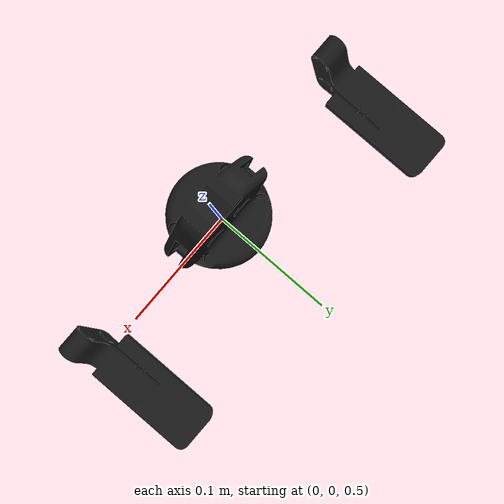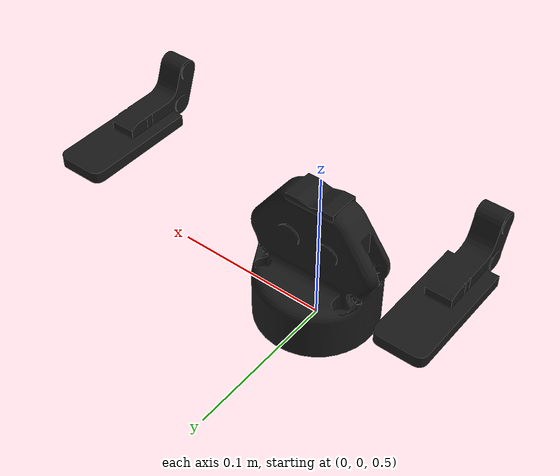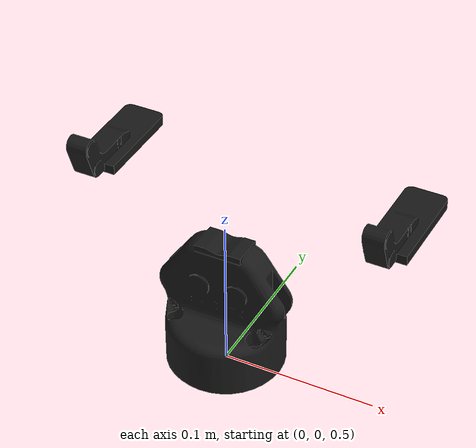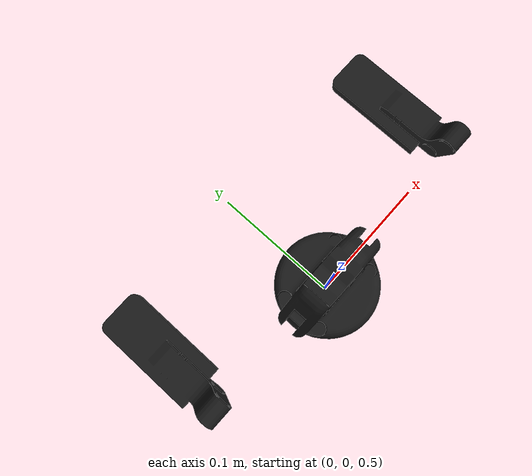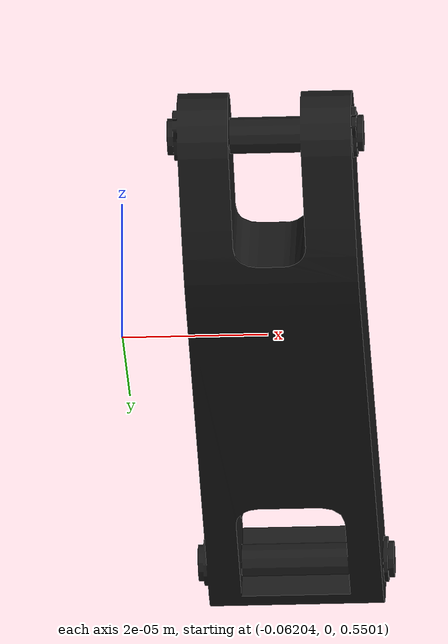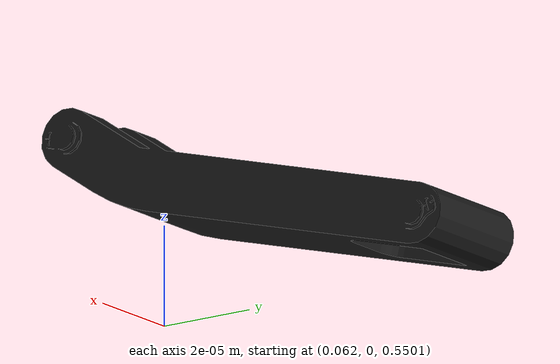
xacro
<?xml version="1.0"?>
<robot xmlns:xacro="http://ros.org/wiki/xacro" name="robotiq_gripper" >
  <xacro:include filename="$(find robotiq_140_gripper_description)/urdf/robotiq_140.urdf.xacro" />
  <xacro:robotiq_gripper prefix="robotiq_140_" MAC="_000000000004"/>

  <link name="world" />

  <joint name="world_to_robotiq_adapter" type="fixed">
    <origin rpy="0 0 0" xyz="0 0 0.5"/>
    <parent link="world"/>
    <child link="robotiq_140_robotiq_arg2f_base_link"/>
  </joint>

  <gazebo>
    <plugin filename="libgazebo_ros_joint_state_publisher.so" name="robotiq_140_joint_state">
      <ros>
        <argument>~/out:=robotiq_140_joint_states</argument>
      </ros>
      <update_rate>25</update_rate>
      <joint_name>robotiq_140_joint_finger</joint_name>
    </plugin>
  </gazebo>
</robot>

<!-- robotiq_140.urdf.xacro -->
<robot xmlns:xacro="http://ros.org/wiki/xacro">
  <xacro:macro name="robotiq_gripper"  params="prefix MAC">
    <link name="${prefix}robotiq_arg2f_base_link">
      <inertial>
        <origin xyz="-0.00013 0.00011 0.03284" rpy="0 0 0" />
        <mass value="0.52954" />
        <inertia ixx="573495E-9" ixy="-554E-9" ixz="2628E-9" iyy="681780E-9" iyz="607E-9" izz="483281E-9" />
      </inertial>
      <visual>
        <origin xyz="0 0 0" rpy="0 0 0" />
        <geometry>
          <mesh filename="package://robotiq_140_gripper_description/meshes/GRIPPER_base_axis.dae" scale="0.001 0.001 0.001"/>
        </geometry>
        <material name="Gazebo/Black">
          <color rgba="0.1 0.1 0.1 1" />
        </material>
      </visual>
      <collision>
        <origin xyz="0 0 0" rpy="0 0 0" />
        <geometry>
          <mesh filename="package://robotiq_140_gripper_description/meshes/GRIPPER_base_axis.dae" scale="0.001 0.001 0.001"/>
        </geometry>
      </collision>
    </link>
    <gazebo reference="${prefix}robotiq_arg2f_base_link">
      <material>Gazebo/Black</material>
      <selfCollide>True</selfCollide>
    </gazebo>

    <link name="${prefix}left_outer_knuckle">
      <inertial>
        <origin xyz="0.01616 0 -0.00133" rpy="0 0 0" />
        <mass value="0.0131" />
        <inertia ixx="325.5E-9" ixy="0" ixz="197.94E-9" iyy="2306.36E-9" iyz="0" izz="2176E-9" />
      </inertial>
      <visual>
        <origin xyz="0 0 0" rpy="0 0 0" />
        <geometry>
          <mesh filename="package://robotiq_140_gripper_description/meshes/robotiq_140_left_outer_knuckle.dae" scale="0.001 0.001 0.001"/>
        </geometry>
        <material name="">
          <color rgba="0.792156862745098 0.819607843137255 0.933333333333333 1" />
        </material>
      </visual>
      <collision>
        <origin xyz="0 0 0" rpy="0 0 0" />
        <geometry>
          <mesh filename="package://robotiq_140_gripper_description/meshes/robotiq_140_left_outer_knuckle.dae" scale="0.001 0.001 0.001"/>
        </geometry>
      </collision>
    </link>
    <gazebo reference="${prefix}left_outer_knuckle">
      <material>Gazebo/Grey</material>
      <selfCollide>True</selfCollide>
    </gazebo>

    <link name="${prefix}right_outer_knuckle">
      <inertial>
        <origin xyz="-0.01616 0 -0.00133" rpy="0 0 0" />
        <mass value="0.0131" />
        <inertia ixx="325.5E-9" ixy="0" ixz="-197.94E-9" iyy="2306.36E-9" iyz="0" izz="2176E-9" />
      </inertial>
      <visual>
        <origin xyz="0 0 0" rpy="0 0 0" />
        <geometry>
          <mesh filename="package://robotiq_140_gripper_description/meshes/robotiq_140_right_outer_knuckle.dae" scale="0.001 0.001 0.001"/>
        </geometry>
        <material name="">
          <color rgba="0.792156862745098 0.819607843137255 0.933333333333333 1" />
        </material>
      </visual>
      <collision>
        <origin xyz="0 0 0" rpy="0 0 0" />
        <geometry>
          <mesh filename="package://robotiq_140_gripper_description/meshes/robotiq_140_right_outer_knuckle.dae" scale="0.001 0.001 0.001"/>
        </geometry>
      </collision>
    </link>
    <gazebo reference="${prefix}right_outer_knuckle">
      <material>Gazebo/Grey</material>
      <selfCollide>True</selfCollide>
    </gazebo>

    <link name="${prefix}left_inner_knuckle">
      <inertial>
        <origin xyz="0.03332 0 0.0379" rpy="0 0 0" />
        <mass value="0.04476" />
        <inertia ixx="28054E-9" ixy="0" ixz="-19174E-9" iyy="39758E-9" iyz="0" izz="23453E-9" />
      </inertial>
      <visual>
        <origin xyz="0 0 0" rpy="0 0 0" />
        <geometry>
          <mesh filename="package://robotiq_140_gripper_description/meshes/robotiq_140_left_inner_knuckle.dae" scale="0.001 0.001 0.001"/>
        </geometry>
        <material name="Gazebo/Black">
          <color rgba="0.1 0.1 0.1 1" />
        </material>
      </visual>
      <collision>
        <origin xyz="0 0 0" rpy="0 0 0" />
        <geometry>
          <mesh filename="package://robotiq_140_gripper_description/meshes/robotiq_140_left_inner_knuckle.dae" scale="0.001 0.001 0.001"/>
        </geometry>
      </collision>
    </link>
    <gazebo reference="${prefix}left_inner_knuckle">
      <material>Gazebo/Black</material>
      <selfCollide>False</selfCollide>
    </gazebo>

    <link name="${prefix}right_inner_knuckle">
      <inertial>
        <origin xyz="-0.03332 0 0.0379" rpy="0 0 0" />
        <mass value="0.04476" />
        <inertia ixx="28054E-9" ixy="0" ixz="19174E-9" iyy="39758E-9" iyz="0" izz="23453E-9" />
      </inertial>
      <visual>
        <origin xyz="0 0 0" rpy="0 0 0" />
        <geometry>
          <mesh filename="package://robotiq_140_gripper_description/meshes/robotiq_140_right_inner_knuckle.dae" scale="0.001 0.001 0.001"/>
        </geometry>
        <material name="Gazebo/Black">
          <color rgba="0.1 0.1 0.1 1" />
        </material>
      </visual>
      <collision>
        <origin xyz="0 0 0" rpy="0 0 0" />
        <geometry>
          <mesh filename="package://robotiq_140_gripper_description/meshes/robotiq_140_right_inner_knuckle.dae" scale="0.001 0.001 0.001"/>
        </geometry>
      </collision>
    </link>
    <gazebo reference="${prefix}right_inner_knuckle">
      <material>Gazebo/Black</material>
      <selfCollide>False</selfCollide>
    </gazebo>

    <link name="${prefix}left_inner_finger">
      <inertial>
        <origin xyz="-0.01563 0 0.02522" rpy="0 0 0" />
        <mass value="0.045" />
        <inertia ixx="26663E-9" ixy="0" ixz="5579E-9" iyy="28009E-9" iyz="0" izz="4368E-9" />
      </inertial>
      <visual>
        <origin xyz="0 0 0" rpy="0 0 0" />
        <geometry>
          <mesh filename="package://robotiq_140_gripper_description/meshes/robotiq_140_left_inner_finger.dae" scale="0.001 0.001 0.001" />
        </geometry>
        <material name="Gazebo/Black">
          <color rgba="0.1 0.1 0.1 1" />
        </material>
      </visual>
      <collision>
        <origin xyz="0 0 0" rpy="0 0 0" />
        <geometry>
          <mesh filename="package://robotiq_140_gripper_description/meshes/robotiq_140_left_inner_finger.dae" scale="0.001 0.001 0.001" />
        </geometry>
      </collision>
    </link>
    <gazebo reference="${prefix}left_inner_finger">
      <material>Gazebo/Black</material>
      <selfCollide>False</selfCollide>
    </gazebo>

    <link name="${prefix}right_inner_finger">
      <inertial>
        <origin xyz="0.01563 0 0.02522" rpy="0 0 0" />
        <mass value="0.045" />
        <inertia ixx="26663E-9" ixy="0" ixz="-5579E-9" iyy="28009E-9" iyz="0" izz="4368E-9" />
      </inertial>
      <visual>
        <origin xyz="0 0 0" rpy="0 0 0" />
        <geometry>
          <mesh filename="package://robotiq_140_gripper_description/meshes/robotiq_140_right_inner_finger.dae" scale="0.001 0.001 0.001"/>
        </geometry>
        <material name="Gazebo/Black">
          <color rgba="0.1 0.1 0.1 1" />
        </material>
      </visual>
      <collision>
        <origin xyz="0 0 0" rpy="0 0 0" />
        <geometry>
          <mesh filename="package://robotiq_140_gripper_description/meshes/robotiq_140_right_inner_finger.dae" scale="0.001 0.001 0.001"/>
        </geometry>
      </collision>
    </link>
    <gazebo reference="${prefix}right_inner_finger">
      <material>Gazebo/Black</material>
      <selfCollide>False</selfCollide>
    </gazebo>

    <link name="${prefix}left_outer_finger">
      <inertial>
        <origin xyz="0.01482 0 0.03451" rpy="0 0 0" />
        <mass value="0.07637" />
        <inertia ixx="45513E-9" ixy="0" ixz="-20691E-9" iyy="52570E-9" iyz="0" izz="17804E-9" />
      </inertial>
      <visual>
        <origin xyz="0 0 0" rpy="0 0 0" />
        <geometry>
          <mesh filename="package://robotiq_140_gripper_description/meshes/robotiq_140_left_outer_finger.dae" scale="0.001 0.001 0.001"/>
        </geometry>
        <material name="Gazebo/Black">
          <color rgba="0.1 0.1 0.1 1" />
        </material>
      </visual>
      <collision>
        <origin xyz="0 0 0" rpy="0 0 0" />
        <geometry>
          <mesh filename="package://robotiq_140_gripper_description/meshes/robotiq_140_left_outer_finger.dae" scale="0.001 0.001 0.001"/>
        </geometry>
      </collision>
    </link>
    <gazebo reference="${prefix}left_outer_finger">
      <material>Gazebo/Black</material>
      <selfCollide>True</selfCollide>
    </gazebo>

    <link name="${prefix}right_outer_finger">
      <inertial>
        <origin xyz="-0.01482 0 0.03451" rpy="0 0 0" />
        <mass value="0.07637" />
        <inertia ixx="45513E-9" ixy="0" ixz="20691E-9" iyy="52570E-9" iyz="0" izz="17804E-9" />
      </inertial>
      <visual>
        <origin xyz="0 0 0" rpy="0 0 0" />
        <geometry>
          <mesh filename="package://robotiq_140_gripper_description/meshes/robotiq_140_right_outer_finger.dae" scale="0.001 0.001 0.001"/>
        </geometry>
        <material name="Gazebo/Black">
          <color rgba="0.1 0.1 0.1 1" />
        </material>
      </visual>
      <collision>
        <origin xyz="0 0 0" rpy="0 0 0" />
        <geometry>
          <mesh filename="package://robotiq_140_gripper_description/meshes/robotiq_140_right_outer_finger.dae" scale="0.001 0.001 0.001"/>
        </geometry>
      </collision>
    </link>
    <gazebo reference="${prefix}right_outer_finger">
      <material>Gazebo/Black</material>
      <selfCollide>True</selfCollide>
    </gazebo>

    <joint name="robotiq_arg2f_base_to_${prefix}left_outer_knuckle" type="revolute">
      <origin xyz="0.0306 0 0.05466" rpy="0 0 0" />
      <parent link="${prefix}robotiq_arg2f_base_link" />
      <child link="${prefix}left_outer_knuckle" />
      <axis xyz="0 -1 0" />
      <limit lower="0" upper="0.78574722925"  velocity="2.0" effort="18.65" />
      <mimic joint="${prefix}joint_finger" multiplier="1" offset="0"/>
    </joint>

    <joint name="${prefix}joint_finger" type="revolute">
      <origin xyz="-0.0306 0 0.05466" rpy="0 0 0" />
      <parent link="${prefix}robotiq_arg2f_base_link" />
      <child link="${prefix}right_outer_knuckle" />
      <axis xyz="0 1 0" />
      <limit lower="0" upper="0.78574722925" velocity="3.54" effort="18.65" />
    </joint>

    <joint name="robotiq_arg2f_base_to_${prefix}left_inner_knuckle" type="revolute">
      <origin xyz="0.0127 0 0.06118" rpy="0 0 0" />
      <parent link="${prefix}robotiq_arg2f_base_link" />
      <child link="${prefix}left_inner_knuckle" />
      <axis xyz="0 -1 0" />
      <limit lower="0" upper="0.78574722925" velocity="3.54" effort="18.65" />
      <mimic joint="${prefix}joint_finger" multiplier="1" offset="0"/>
    </joint>

    <joint name="robotiq_arg2f_base_to_${prefix}right_inner_knuckle" type="revolute">
      <origin xyz="-0.0127 0 0.06118" rpy="0 0 0" />
      <parent link="${prefix}robotiq_arg2f_base_link" />
      <child link="${prefix}right_inner_knuckle" />
      <axis xyz="0 1 0" />
      <limit lower="0" upper="0.78574722925" velocity="3.54" effort="18.65" />
      <mimic joint="${prefix}joint_finger" multiplier="1" offset="0"/>
    </joint>

    <joint name="${prefix}left_outer_knuckle_to_finger" type="fixed">
      <origin xyz="0.03142 0 -0.00453" rpy="0 0 0" />
      <parent link="${prefix}left_outer_knuckle" />
      <child link="${prefix}left_outer_finger" />
    </joint>

    <joint name="${prefix}right_outer_knuckle_to_finger" type="fixed">
      <origin xyz="-0.03142 0 -0.00453" rpy="0 0 0" />
      <parent link="${prefix}right_outer_knuckle" />
      <child link="${prefix}right_outer_finger" />
    </joint>

    <joint name="${prefix}left_outer_finger_to_inner" type="revolute">
      <origin xyz="0.03543 0 0.0789" rpy="0 0 0" />
      <parent link="${prefix}left_outer_finger" />
      <child link="${prefix}left_inner_finger" />
      <axis xyz="0 1 0" />
      <limit lower="0" upper="0.78574722925" velocity="3.54" effort="18.65" />
      <mimic joint="${prefix}joint_finger" multiplier="1" offset="0"/>
    </joint>

    <joint name="${prefix}right_outer_finger_to_inner" type="revolute">
      <origin xyz="-0.03543 0 0.0789" rpy="0 0 0" />
      <parent link="${prefix}right_outer_finger" />
      <child link="${prefix}right_inner_finger" />
      <axis xyz="0 -1 0" />
      <limit lower="0" upper="0.78574722925" velocity="3.54" effort="18.65" />
      <mimic joint="${prefix}joint_finger" multiplier="1" offset="0"/>
    </joint>

    <gazebo>
      <joint name="${prefix}left_inner_knuckle_to_finger" type="revolute">
        <pose frame="">-0.0179 0 0.00652 0 0 0</pose>
        <parent>${prefix}left_inner_knuckle</parent>
        <child>${prefix}left_inner_finger</child>
        <axis>
          <xyz>0 1 0</xyz>
          <limit>
            <lower>0</lower>
            <upper>0.78574722925</upper>
            <velocity>3.54</velocity>
            <effort>18.65</effort>
          </limit>
        </axis>
      </joint>

      <joint name="${prefix}right_inner_knuckle_to_finger" type="revolute">
        <pose frame="">0.0179 0 0.00652 0 0 0</pose>
        <parent>${prefix}right_inner_knuckle</parent>
        <child>${prefix}right_inner_finger</child>
        <axis>
          <xyz>0 -1 0</xyz>
          <limit>
            <lower>0</lower>
            <upper>0.78574722925</upper>
            <velocity>3.54</velocity>
            <effort>18.65</effort>
          </limit>
        </axis>
      </joint>

      <plugin filename="librobotiq_gripper_gazebo_plugin.so" name="hrim_actuator_gripper${MAC}">
        <kp>600</kp>
        <ki>0.1</ki>
        <kd>0.01</kd>
        <min_velocity>30</min_velocity>
        <max_velocity>250</max_velocity>
        <radius>156</radius>
        <joint>robotiq_arg2f_base_to_${prefix}left_inner_knuckle</joint>
        <joint>robotiq_arg2f_base_to_${prefix}left_outer_knuckle</joint>
        <joint>robotiq_arg2f_base_to_${prefix}right_inner_knuckle</joint>
        <joint>${prefix}joint_finger</joint>
      </plugin>
    </gazebo>
  </xacro:macro>
</robot>
